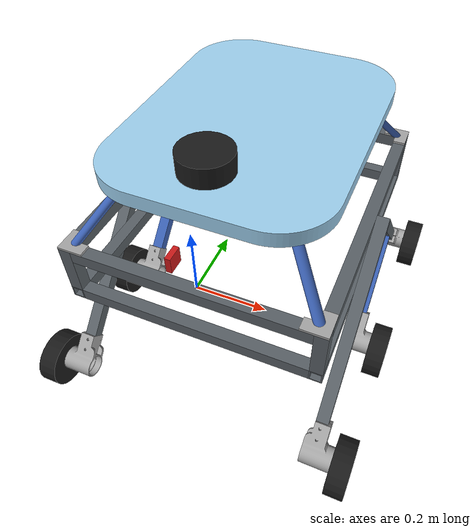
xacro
<?xml version="1.0"?>
<robot name="larry_robot"
  xmlns:xacro="http://www.ros.org/wiki/xacro">

  <xacro:arg name="use_sim" default="true"/>

  <xacro:property name="use_sim_val" value="$(arg use_sim)" />

  <xacro:include filename="larry_core.xacro" />
  <xacro:include filename="larry_wheels.xacro" />
  <xacro:include filename="larry.ros2_control.xacro" />
  <xacro:include filename="lidar.xacro" />
  <xacro:include filename="depth_camera.xacro" />

  <!-- red is used by depth_camera.xacro; black is already defined in larry_wheels.xacro -->
  <material name="red">
    <color rgba="0.8 0.1 0.1 1.0"/>
  </material>

  <xacro:larry_core />

  <!-- Approximated values -->
  <xacro:build_wheel prefix="front_left" x="-0.16" y="-0.345" z="-0.35" />
  <xacro:build_wheel prefix="front_right" x="0.5" y="-0.345" z="-0.35" />

  <xacro:build_wheel prefix="mid_left" x="-0.16" y="-0.05" z="-0.35" />
  <xacro:build_wheel prefix="mid_right" x="0.5" y="-0.05" z="-0.35" />

  <xacro:build_wheel prefix="rear_left" x="-0.16" y="0.33" z="-0.35" />
  <xacro:build_wheel prefix="rear_right" x="0.5" y="0.33" z="-0.35" />

  <xacro:larry_ros2_control use_sim="${use_sim_val}" />

</robot>

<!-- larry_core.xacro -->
<robot xmlns:xacro="http://www.ros.org/wiki/xacro">
    <xacro:macro name="larry_core">

        <link name="base_link"/>

        <joint name="base_joint" type="fixed">
            <parent link="base_link"/>
            <child link="part_1"/>
            <origin xyz="0 0 0.41" rpy="0 0 0"/>
        </joint>

        <!-- Link part_1 -->
        <link name="part_1">
            <inertial>
                <origin xyz="0 0 0" rpy="0 0 0"/>
                <mass value="1e-09"/>
                <inertia ixx="1e-09" ixy="0" ixz="0" iyy="1e-09" iyz="0" izz="1e-09"/>
            </inertial>
            <!-- Part part_3 -->
            <visual>
                <origin xyz="-0.0658541 -0.0691416 -0.0314545" rpy="0 -0 -0"/>
                <geometry>
                    <mesh filename="package://larry_description/meshes/part_3.stl"/>
                </geometry>
                <material name="part_3_material">
                    <color rgba="0.34902 0.376471 0.4 1"/>
                </material>
            </visual>
            <collision>
                <origin xyz="-0.0658541 -0.0691416 -0.0314545" rpy="0 -0 -0"/>
                <geometry>
                    <mesh filename="package://larry_description/meshes/part_3.stl"/>
                </geometry>
            </collision>
            <!-- Part part_3_2 -->
            <visual>
                <origin xyz="-0.0063048 -0.0830358 -0.105757" rpy="0 0 -0"/>
                <geometry>
                    <mesh filename="package://larry_description/meshes/part_3__2.stl"/>
                </geometry>
                <material name="part_3_2_material">
                    <color rgba="0.231373 0.380392 0.705882 1"/>
                </material>
            </visual>
            <collision>
                <origin xyz="-0.0063048 -0.0830358 -0.105757" rpy="0 0 -0"/>
                <geometry>
                    <mesh filename="package://larry_description/meshes/part_3__2.stl"/>
                </geometry>
            </collision>
            <!-- Part part_1 -->
            <visual>
                <origin xyz="0.533445 -0.0830358 -0.105757" rpy="0 0 -0"/>
                <geometry>
                    <mesh filename="package://larry_description/meshes/part_1.stl"/>
                </geometry>
                <material name="part_1_material">
                    <color rgba="0.647059 0.647059 0.647059 1"/>
                </material>
            </visual>
            <collision>
                <origin xyz="0.533445 -0.0830358 -0.105757" rpy="0 0 -0"/>
                <geometry>
                    <mesh filename="package://larry_description/meshes/part_1.stl"/>
                </geometry>
            </collision>
            <!-- Part part_1_1 -->
            <visual>
                <origin xyz="-0.0658541 -0.0691416 -0.0314545" rpy="0 0 -0"/>
                <geometry>
                    <mesh filename="package://larry_description/meshes/part_1_1.stl"/>
                </geometry>
                <material name="part_1_1_material">
                    <color rgba="0.34902 0.376471 0.4 1"/>
                </material>
            </visual>
            <collision>
                <origin xyz="-0.0658541 -0.0691416 -0.0314545" rpy="0 0 -0"/>
                <geometry>
                    <mesh filename="package://larry_description/meshes/part_1_1.stl"/>
                </geometry>
            </collision>
            <!-- Part part_2_1 -->
            <visual>
                <origin xyz="-0.0658541 -0.0691416 -0.0314545" rpy="0 0 -0"/>
                <geometry>
                    <mesh filename="package://larry_description/meshes/part_2_1.stl"/>
                </geometry>
                <material name="part_2_1_material">
                    <color rgba="0.34902 0.376471 0.4 1"/>
                </material>
            </visual>
            <collision>
                <origin xyz="-0.0658541 -0.0691416 -0.0314545" rpy="0 0 -0"/>
                <geometry>
                    <mesh filename="package://larry_description/meshes/part_2_1.stl"/>
                </geometry>
            </collision>
            <!-- Part part_1_2 -->
            <visual>
                <origin xyz="-0.0063048 -0.0830358 -0.105757" rpy="0 0 -0"/>
                <geometry>
                    <mesh filename="package://larry_description/meshes/part_1__2.stl"/>
                </geometry>
                <material name="part_1_2_material">
                    <color rgba="0.34902 0.376471 0.4 1"/>
                </material>
            </visual>
            <collision>
                <origin xyz="-0.0063048 -0.0830358 -0.105757" rpy="0 0 -0"/>
                <geometry>
                    <mesh filename="package://larry_description/meshes/part_1__2.stl"/>
                </geometry>
            </collision>
            <!-- Part part_2_3 -->
            <visual>
                <origin xyz="-0.0658541 -0.0691416 -0.0314545" rpy="0 0 -0"/>
                <geometry>
                    <mesh filename="package://larry_description/meshes/part_2_3.stl"/>
                </geometry>
                <material name="part_2_3_material">
                    <color rgba="0.34902 0.376471 0.4 1"/>
                </material>
            </visual>
            <collision>
                <origin xyz="-0.0658541 -0.0691416 -0.0314545" rpy="0 0 -0"/>
                <geometry>
                    <mesh filename="package://larry_description/meshes/part_2_3.stl"/>
                </geometry>
            </collision>
            <!-- Part part_2 -->
            <visual>
                <origin xyz="-0.0063048 -0.0830358 -0.105757" rpy="0 0 -0"/>
                <geometry>
                    <mesh filename="package://larry_description/meshes/part_2.stl"/>
                </geometry>
                <material name="part_2_material">
                    <color rgba="0.34902 0.376471 0.4 1"/>
                </material>
            </visual>
            <collision>
                <origin xyz="-0.0063048 -0.0830358 -0.105757" rpy="0 0 -0"/>
                <geometry>
                    <mesh filename="package://larry_description/meshes/part_2.stl"/>
                </geometry>
            </collision>
            <!-- Part part_4 -->
            <visual>
                <origin xyz="-0.0658541 -0.0691416 -0.0314545" rpy="0 0 -0"/>
                <geometry>
                    <mesh filename="package://larry_description/meshes/part_4.stl"/>
                </geometry>
                <material name="part_4_material">
                    <color rgba="0.34902 0.376471 0.4 1"/>
                </material>
            </visual>
            <collision>
                <origin xyz="-0.0658541 -0.0691416 -0.0314545" rpy="0 0 -0"/>
                <geometry>
                    <mesh filename="package://larry_description/meshes/part_4.stl"/>
                </geometry>
            </collision>
            <!-- Part part_3_3 -->
            <visual>
                <origin xyz="0.533445 -0.0830358 -0.105757" rpy="0 0 -0"/>
                <geometry>
                    <mesh filename="package://larry_description/meshes/part_3__2.stl"/>
                </geometry>
                <material name="part_3_3_material">
                    <color rgba="0.231373 0.380392 0.705882 1"/>
                </material>
            </visual>
            <collision>
                <origin xyz="0.533445 -0.0830358 -0.105757" rpy="0 0 -0"/>
                <geometry>
                    <mesh filename="package://larry_description/meshes/part_3__2.stl"/>
                </geometry>
            </collision>
            <!-- Part part_1_3 -->
            <visual>
                <origin xyz="-0.190799 0.185764 -0.374556" rpy="1.5708 0 3.14159"/>
                <geometry>
                    <mesh filename="package://larry_description/meshes/part_1.stl"/>
                </geometry>
                <material name="part_1_3_material">
                    <color rgba="0.647059 0.647059 0.647059 1"/>
                </material>
            </visual>
            <collision>
                <origin xyz="-0.190799 0.185764 -0.374556" rpy="1.5708 0 3.14159"/>
                <geometry>
                    <mesh filename="package://larry_description/meshes/part_1.stl"/>
                </geometry>
            </collision>
            <!-- Part part_1_2 -->
            <visual>
                <origin xyz="0.533445 -0.0830358 -0.105757" rpy="0 0 -0"/>
                <geometry>
                    <mesh filename="package://larry_description/meshes/part_1_2.stl"/>
                </geometry>
                <material name="part_1_2_material">
                    <color rgba="0.647059 0.647059 0.647059 1"/>
                </material>
            </visual>
            <collision>
                <origin xyz="0.533445 -0.0830358 -0.105757" rpy="0 0 -0"/>
                <geometry>
                    <mesh filename="package://larry_description/meshes/part_1_2.stl"/>
                </geometry>
            </collision>
            <!-- Part part_3_4 -->
            <visual>
                <origin xyz="0.403098 0.248145 0.00849795" rpy="0 -0 1.5708"/>
                <geometry>
                    <mesh filename="package://larry_description/meshes/part_3__3.stl"/>
                </geometry>
                <material name="part_3_4_material">
                    <color rgba="0.231373 0.380392 0.705882 1"/>
                </material>
            </visual>
            <collision>
                <origin xyz="0.403098 0.248145 0.00849795" rpy="0 -0 1.5708"/>
                <geometry>
                    <mesh filename="package://larry_description/meshes/part_3__3.stl"/>
                </geometry>
            </collision>
            <!-- Part part_2_2 -->
            <visual>
                <origin xyz="0.403098 0.248145 0.00849795" rpy="0 -0 1.5708"/>
                <geometry>
                    <mesh filename="package://larry_description/meshes/part_2__2.stl"/>
                </geometry>
                <material name="part_2_2_material">
                    <color rgba="0.647059 0.647059 0.647059 1"/>
                </material>
            </visual>
            <collision>
                <origin xyz="0.403098 0.248145 0.00849795" rpy="0 -0 1.5708"/>
                <geometry>
                    <mesh filename="package://larry_description/meshes/part_2__2.stl"/>
                </geometry>
            </collision>
            <!-- Part part_1_1_2 -->
            <visual>
                <origin xyz="0.533445 -0.0830358 -0.105757" rpy="0 0 0"/>
                <geometry>
                    <mesh filename="package://larry_description/meshes/part_1_1__2.stl"/>
                </geometry>
                <material name="part_1_1_2_material">
                    <color rgba="0.647059 0.647059 0.647059 1"/>
                </material>
            </visual>
            <collision>
                <origin xyz="0.533445 -0.0830358 -0.105757" rpy="0 0 0"/>
                <geometry>
                    <mesh filename="package://larry_description/meshes/part_1_1__2.stl"/>
                </geometry>
            </collision>
            <!-- Part part_3_5 -->
            <visual>
                <origin xyz="0.377698 -0.291605 0.00849795" rpy="0 -0 0"/>
                <geometry>
                    <mesh filename="package://larry_description/meshes/part_3__3.stl"/>
                </geometry>
                <material name="part_3_5_material">
                    <color rgba="0.231373 0.380392 0.705882 1"/>
                </material>
            </visual>
            <collision>
                <origin xyz="0.377698 -0.291605 0.00849795" rpy="0 -0 0"/>
                <geometry>
                    <mesh filename="package://larry_description/meshes/part_3__3.stl"/>
                </geometry>
            </collision>
            <!-- Part part_2_3 -->
            <visual>
                <origin xyz="-0.0658541 -0.0691416 -0.0314545" rpy="0 0 -0"/>
                <geometry>
                    <mesh filename="package://larry_description/meshes/part_2__3.stl"/>
                </geometry>
                <material name="part_2_3_material">
                    <color rgba="0.34902 0.376471 0.4 1"/>
                </material>
            </visual>
            <collision>
                <origin xyz="-0.0658541 -0.0691416 -0.0314545" rpy="0 0 -0"/>
                <geometry>
                    <mesh filename="package://larry_description/meshes/part_2__3.stl"/>
                </geometry>
            </collision>
            <!-- Part part_1_4 -->
            <visual>
                <origin xyz="-0.0478 0.523595 0.130935" rpy="0 0 -0"/>
                <geometry>
                    <mesh filename="package://larry_description/meshes/part_1__3.stl"/>
                </geometry>
                <material name="part_1_4_material">
                    <color rgba="0.615686 0.811765 0.929412 1"/>
                </material>
            </visual>
            <collision>
                <origin xyz="-0.0478 0.523595 0.130935" rpy="0 0 -0"/>
                <geometry>
                    <mesh filename="package://larry_description/meshes/part_1__3.stl"/>
                </geometry>
            </collision>
            <!-- Part part_2_4 -->
            <visual>
                <origin xyz="0.377698 -0.291605 0.00849795" rpy="0 0 -0"/>
                <geometry>
                    <mesh filename="package://larry_description/meshes/part_2__2.stl"/>
                </geometry>
                <material name="part_2_4_material">
                    <color rgba="0.647059 0.647059 0.647059 1"/>
                </material>
            </visual>
            <collision>
                <origin xyz="0.377698 -0.291605 0.00849795" rpy="0 0 -0"/>
                <geometry>
                    <mesh filename="package://larry_description/meshes/part_2__2.stl"/>
                </geometry>
            </collision>
            <!-- Part part_2_5 -->
            <visual>
                <origin xyz="0.533445 -0.0830358 -0.105757" rpy="0 0 -0"/>
                <geometry>
                    <mesh filename="package://larry_description/meshes/part_2.stl"/>
                </geometry>
                <material name="part_2_5_material">
                    <color rgba="0.34902 0.376471 0.4 1"/>
                </material>
            </visual>
            <collision>
                <origin xyz="0.533445 -0.0830358 -0.105757" rpy="0 0 -0"/>
                <geometry>
                    <mesh filename="package://larry_description/meshes/part_2.stl"/>
                </geometry>
            </collision>
            <!-- Part part_2_6 -->
            <visual>
                <origin xyz="-0.035052 0.273545 0.00849795" rpy="-0 -0 3.14159"/>
                <geometry>
                    <mesh filename="package://larry_description/meshes/part_2__2.stl"/>
                </geometry>
                <material name="part_2_6_material">
                    <color rgba="0.647059 0.647059 0.647059 1"/>
                </material>
            </visual>
            <collision>
                <origin xyz="-0.035052 0.273545 0.00849795" rpy="-0 -0 3.14159"/>
                <geometry>
                    <mesh filename="package://larry_description/meshes/part_2__2.stl"/>
                </geometry>
            </collision>
            <!-- Part part_3_2 -->
            <visual>
                <origin xyz="-0.0658541 -0.0691416 -0.0314545" rpy="0 -0 -0"/>
                <geometry>
                    <mesh filename="package://larry_description/meshes/part_3_2.stl"/>
                </geometry>
                <material name="part_3_2_material">
                    <color rgba="0.34902 0.376471 0.4 1"/>
                </material>
            </visual>
            <collision>
                <origin xyz="-0.0658541 -0.0691416 -0.0314545" rpy="0 -0 -0"/>
                <geometry>
                    <mesh filename="package://larry_description/meshes/part_3_2.stl"/>
                </geometry>
            </collision>
            <!-- Part part_1_2_2 -->
            <visual>
                <origin xyz="-0.190799 -0.110585 -0.0782078" rpy="1.5708 0 3.14159"/>
                <geometry>
                    <mesh filename="package://larry_description/meshes/part_1_2.stl"/>
                </geometry>
                <material name="part_1_2_2_material">
                    <color rgba="0.647059 0.647059 0.647059 1"/>
                </material>
            </visual>
            <collision>
                <origin xyz="-0.190799 -0.110585 -0.0782078" rpy="1.5708 0 3.14159"/>
                <geometry>
                    <mesh filename="package://larry_description/meshes/part_1_2.stl"/>
                </geometry>
            </collision>
            <!-- Part part_2_7 -->
            <visual>
                <origin xyz="-0.060452 -0.266205 0.00849795" rpy="-0 0 -1.5708"/>
                <geometry>
                    <mesh filename="package://larry_description/meshes/part_2__2.stl"/>
                </geometry>
                <material name="part_2_7_material">
                    <color rgba="0.647059 0.647059 0.647059 1"/>
                </material>
            </visual>
            <collision>
                <origin xyz="-0.060452 -0.266205 0.00849795" rpy="-0 0 -1.5708"/>
                <geometry>
                    <mesh filename="package://larry_description/meshes/part_2__2.stl"/>
                </geometry>
            </collision>
            <!-- Part part_3_6 -->
            <visual>
                <origin xyz="-0.035052 0.273545 0.00849795" rpy="-0 -0 3.14159"/>
                <geometry>
                    <mesh filename="package://larry_description/meshes/part_3__3.stl"/>
                </geometry>
                <material name="part_3_6_material">
                    <color rgba="0.231373 0.380392 0.705882 1"/>
                </material>
            </visual>
            <collision>
                <origin xyz="-0.035052 0.273545 0.00849795" rpy="-0 -0 3.14159"/>
                <geometry>
                    <mesh filename="package://larry_description/meshes/part_3__3.stl"/>
                </geometry>
            </collision>
            <!-- Part part_1_5 -->
            <visual>
                <origin xyz="0.533445 -0.0830358 -0.105757" rpy="0 0 -0"/>
                <geometry>
                    <mesh filename="package://larry_description/meshes/part_1__2.stl"/>
                </geometry>
                <material name="part_1_5_material">
                    <color rgba="0.34902 0.376471 0.4 1"/>
                </material>
            </visual>
            <collision>
                <origin xyz="0.533445 -0.0830358 -0.105757" rpy="0 0 -0"/>
                <geometry>
                    <mesh filename="package://larry_description/meshes/part_1__2.stl"/>
                </geometry>
            </collision>
            <!-- Part part_1_6 -->
            <visual>
                <origin xyz="-0.0658541 -0.0691416 -0.0314545" rpy="0 0 -0"/>
                <geometry>
                    <mesh filename="package://larry_description/meshes/part_1__4.stl"/>
                </geometry>
                <material name="part_1_6_material">
                    <color rgba="0.34902 0.376471 0.4 1"/>
                </material>
            </visual>
            <collision>
                <origin xyz="-0.0658541 -0.0691416 -0.0314545" rpy="0 0 -0"/>
                <geometry>
                    <mesh filename="package://larry_description/meshes/part_1__4.stl"/>
                </geometry>
            </collision>
            <!-- Part part_3_7 -->
            <visual>
                <origin xyz="-0.060452 -0.266205 0.00849795" rpy="-0 0 -1.5708"/>
                <geometry>
                    <mesh filename="package://larry_description/meshes/part_3__3.stl"/>
                </geometry>
                <material name="part_3_7_material">
                    <color rgba="0.231373 0.380392 0.705882 1"/>
                </material>
            </visual>
            <collision>
                <origin xyz="-0.060452 -0.266205 0.00849795" rpy="-0 0 -1.5708"/>
                <geometry>
                    <mesh filename="package://larry_description/meshes/part_3__3.stl"/>
                </geometry>
            </collision>
            <!-- Part part_1_1_3 -->
            <visual>
                <origin xyz="-0.190799 0.0925248 0.0698037" rpy="-1.5708 0 3.14159"/>
                <geometry>
                    <mesh filename="package://larry_description/meshes/part_1_1__2.stl"/>
                </geometry>
                <material name="part_1_1_3_material">
                    <color rgba="0.647059 0.647059 0.647059 1"/>
                </material>
            </visual>
            <collision>
                <origin xyz="-0.190799 0.0925248 0.0698037" rpy="-1.5708 0 3.14159"/>
                <geometry>
                    <mesh filename="package://larry_description/meshes/part_1_1__2.stl"/>
                </geometry>
            </collision>
            <!-- Part part_3_3 -->
            <visual>
                <origin xyz="-0.0658541 -0.0691416 -0.0314545" rpy="0 -0 0"/>
                <geometry>
                    <mesh filename="package://larry_description/meshes/part_3_3.stl"/>
                </geometry>
                <material name="part_3_3_material">
                    <color rgba="0.34902 0.376471 0.4 1"/>
                </material>
            </visual>
            <collision>
                <origin xyz="-0.0658541 -0.0691416 -0.0314545" rpy="0 -0 0"/>
                <geometry>
                    <mesh filename="package://larry_description/meshes/part_3_3.stl"/>
                </geometry>
            </collision>
            <!-- Part part_4_1 -->
            <visual>
                <origin xyz="-0.0658541 -0.0691416 -0.0314545" rpy="0 0 -0"/>
                <geometry>
                    <mesh filename="package://larry_description/meshes/part_4_1.stl"/>
                </geometry>
                <material name="part_4_1_material">
                    <color rgba="0.34902 0.376471 0.4 1"/>
                </material>
            </visual>
            <collision>
                <origin xyz="-0.0658541 -0.0691416 -0.0314545" rpy="0 0 -0"/>
                <geometry>
                    <mesh filename="package://larry_description/meshes/part_4_1.stl"/>
                </geometry>
            </collision>
            <!-- Part part_2_2 -->
            <visual>
                <origin xyz="-0.0658541 -0.0691416 -0.0314545" rpy="0 0 -0"/>
                <geometry>
                    <mesh filename="package://larry_description/meshes/part_2_2.stl"/>
                </geometry>
                <material name="part_2_2_material">
                    <color rgba="0.34902 0.376471 0.4 1"/>
                </material>
            </visual>
            <collision>
                <origin xyz="-0.0658541 -0.0691416 -0.0314545" rpy="0 0 -0"/>
                <geometry>
                    <mesh filename="package://larry_description/meshes/part_2_2.stl"/>
                </geometry>
            </collision>
            <!-- Part part_3_1 -->
            <visual>
                <origin xyz="-0.0658541 -0.0691416 -0.0314545" rpy="0 0 -0"/>
                <geometry>
                    <mesh filename="package://larry_description/meshes/part_3_1.stl"/>
                </geometry>
                <material name="part_3_1_material">
                    <color rgba="0.34902 0.376471 0.4 1"/>
                </material>
            </visual>
            <collision>
                <origin xyz="-0.0658541 -0.0691416 -0.0314545" rpy="0 0 -0"/>
                <geometry>
                    <mesh filename="package://larry_description/meshes/part_3_1.stl"/>
                </geometry>
            </collision>
        </link>

    </xacro:macro>
</robot>

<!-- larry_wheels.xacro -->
<robot xmlns:xacro="http://www.ros.org/wiki/xacro">

    <material name="black">
        <color rgba="0.1 0.1 0.1 1.0"/>
    </material>

    <xacro:macro name="build_wheel" params="prefix x y z">

        <link name="${prefix}_wheel_link">
            <visual>
                <origin xyz="0 0 0" rpy="0 1.5708 0"/>
                <geometry>
                    <cylinder radius="0.06" length="0.04"/>
                </geometry>
                <material name="black"/>
            </visual>
            <collision>
                <origin xyz="0 0 0" rpy="0 1.5708 0"/>
                <geometry>
                    <cylinder radius="0.06" length="0.04"/>
                </geometry>
            </collision>
            <inertial>
                <origin xyz="0 0 0" rpy="0 1.5708 0"/>
                <mass value="0.5"/>
                <inertia ixx="0.0009" ixy="0.0" ixz="0.0" iyy="0.000516" iyz="0.0" izz="0.000516"/>
            </inertial>
        </link>

        <joint name="${prefix}_wheel_joint" type="continuous">
            <parent link="part_1"/>
            <child link="${prefix}_wheel_link"/>
            <origin xyz="${x} ${y} ${z}" rpy="0 0 0"/>
            <axis xyz="1 0 0"/>
            <dynamics damping="0.1" friction="0.1"/>
        </joint>

        <gazebo reference="${prefix}_wheel_link">
            <material>Gazebo/Black</material>
        </gazebo>

    </xacro:macro>
</robot>

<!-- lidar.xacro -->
<robot xmlns:xacro="http://www.ros.org/wiki/xacro" >

    <joint name="laser_joint" type="fixed">
        <parent link="part_1"/>
        <child link="laser"/>
        <!-- Mounted at center-top of robot body, toward the front -->
        <origin xyz="0.17 -0.2 0.2" rpy="0 0 0"/>
    </joint>

    <!-- Match real-world driver frame_id ('laser') -->
    <link name="laser">
        <visual>
            <geometry>
                <cylinder radius="0.05" length="0.04"/>
            </geometry>
            <material name="black"/>
        </visual>
        <collision>
            <geometry>
                <cylinder radius="0.05" length="0.04"/>
            </geometry>
        </collision>
        <inertial>
            <origin xyz="0 0 0" rpy="0 0 0"/>
            <mass value="0.1"/>
            <inertia ixx="6.458e-5" ixy="0" ixz="0"
                     iyy="6.458e-5" iyz="0" izz="9.817e-5"/>
        </inertial>
    </link>

    <gazebo reference="laser">
        <material>Gazebo/Black</material>

        <sensor name="gpu_lidar" type="gpu_lidar">
            <pose> 0 0 0 0 0 0 </pose>
            <topic>scan</topic>
            <update_rate>10</update_rate>
            <gz_frame_id>laser</gz_frame_id>
            <always_on>1</always_on>
            <visualize>true</visualize>
            <ray>
                <scan>
                    <horizontal>
                        <samples>360</samples>
                        <resolution>1</resolution>
                        <min_angle>-3.14159</min_angle>
                        <max_angle>3.14159</max_angle>
                    </horizontal>
                </scan>
                <range>
                    <min>0.1</min>
                    <max>12.0</max>
                    <resolution>0.01</resolution>
                </range>
            </ray>
        </sensor>
    </gazebo>

</robot>

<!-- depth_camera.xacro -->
<robot xmlns:xacro="http://www.ros.org/wiki/xacro" >

    <joint name="camera_joint" type="fixed">
        <parent link="part_1"/>
        <child link="camera_link"/>
        <!-- Mounted at the front of the robot body -->
        <origin xyz="0.17 -0.33 0.1" rpy="0 0 0"/>
    </joint>

    <link name="camera_link">
        <visual>
            <geometry>
                <box size="0.010 0.03 0.03"/>
            </geometry>
            <material name="red"/>
        </visual>
    </link>

    <joint name="camera_optical_joint" type="fixed">
        <parent link="camera_link"/>
        <child link="camera_link_optical"/>
        <origin xyz="0 0 0" rpy="${-pi/2} 0 ${-pi/2}"/>
    </joint>

    <link name="camera_link_optical"/>

    <gazebo reference="camera_link">
        <material>Gazebo/Red</material>

        <sensor name="depth_camera" type="depth_camera">
            <pose> 0 0 0 0 0 0 </pose>
            <topic>/depth_camera</topic>
            <visualize>true</visualize>
            <update_rate>10</update_rate>
            <camera>
                <image>
                    <width>640</width>
                    <height>480</height>
                </image>
                <clip>
                    <near>0.02</near>
                    <far>300</far>
                </clip>
            </camera>
        </sensor>
    </gazebo>

</robot>
